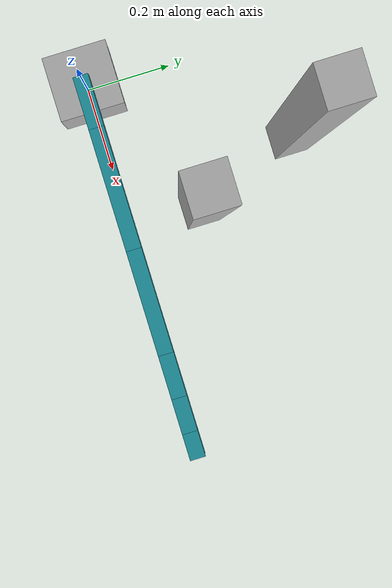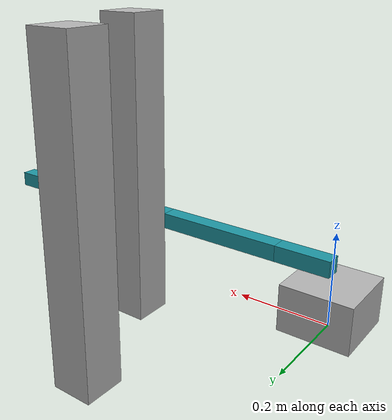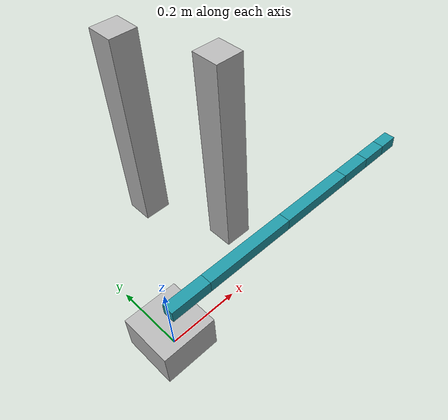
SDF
<sdf version="1.6"><world name="benchmark"><gravity>0 0 -9.81</gravity><physics name="ode" type="ode"><max_step_size>0.001</max_step_size><real_time_update_rate>0</real_time_update_rate><ode><solver><type>quick</type><iters>100</iters></solver></ode></physics><model name="evidence_arm"><static>false</static>
<link name="base"><pose>0 0 .05 0 0 0</pose><inertial><mass>5</mass><inertia><ixx>.1</ixx><iyy>.1</iyy><izz>.1</izz></inertia></inertial><collision name="base_collision"><geometry><box><size>.15 .15 .10</size></box></geometry></collision><visual name="base_visual"><geometry><box><size>.15 .15 .10</size></box></geometry></visual></link>
<joint name="base_fixed" type="fixed"><parent>world</parent><child>base</child></joint>
<link name="link1"><pose>0.06 0 .13 0 0 0</pose><inertial><mass>0.35</mass><inertia><ixx>0.005</ixx><iyy>0.005</iyy><izz>0.005</izz></inertia></inertial>
<collision name="collision"><geometry><box><size>0.12 0.035 0.035</size></box></geometry></collision>
<visual name="visual"><geometry><box><size>0.12 0.035 0.035</size></box></geometry><material><ambient>.12 .6 .65 1</ambient></material></visual></link>
<joint name="joint1" type="revolute"><parent>base</parent><child>link1</child><pose> -0.06 0 0 0 0 0</pose><axis><xyz>0 0 1</xyz><use_parent_model_frame>true</use_parent_model_frame><limit><lower>-2.8</lower><upper>2.8</upper><effort>30</effort><velocity>1.5</velocity></limit><dynamics><damping>.005</damping></dynamics></axis></joint>
<link name="link2"><pose>0.26 0 .13 0 0 0</pose><inertial><mass>0.35</mass><inertia><ixx>0.005</ixx><iyy>0.005</iyy><izz>0.005</izz></inertia></inertial>
<collision name="collision"><geometry><box><size>0.28 0.035 0.035</size></box></geometry></collision>
<visual name="visual"><geometry><box><size>0.28 0.035 0.035</size></box></geometry><material><ambient>.12 .6 .65 1</ambient></material></visual></link>
<joint name="joint2" type="revolute"><parent>link1</parent><child>link2</child><pose> -0.14 0 0 0 0 0</pose><axis><xyz>0 1 0</xyz><use_parent_model_frame>true</use_parent_model_frame><limit><lower>-1.7</lower><upper>1.7</upper><effort>30</effort><velocity>1.5</velocity></limit><dynamics><damping>.005</damping></dynamics></axis></joint>
<link name="link3"><pose>0.52 0 .13 0 0 0</pose><inertial><mass>0.35</mass><inertia><ixx>0.005</ixx><iyy>0.005</iyy><izz>0.005</izz></inertia></inertial>
<collision name="collision"><geometry><box><size>0.24 0.035 0.035</size></box></geometry></collision>
<visual name="visual"><geometry><box><size>0.24 0.035 0.035</size></box></geometry><material><ambient>.12 .6 .65 1</ambient></material></visual></link>
<joint name="joint3" type="revolute"><parent>link2</parent><child>link3</child><pose> -0.12 0 0 0 0 0</pose><axis><xyz>0 1 0</xyz><use_parent_model_frame>true</use_parent_model_frame><limit><lower>-2.1</lower><upper>2.1</upper><effort>30</effort><velocity>1.5</velocity></limit><dynamics><damping>.005</damping></dynamics></axis></joint>
<link name="link4"><pose>0.6900000000000001 0 .13 0 0 0</pose><inertial><mass>0.15</mass><inertia><ixx>0.005</ixx><iyy>0.005</iyy><izz>0.005</izz></inertia></inertial>
<collision name="collision"><geometry><box><size>0.1 0.035 0.035</size></box></geometry></collision>
<visual name="visual"><geometry><box><size>0.1 0.035 0.035</size></box></geometry><material><ambient>.12 .6 .65 1</ambient></material></visual></link>
<joint name="joint4" type="revolute"><parent>link3</parent><child>link4</child><pose> -0.05 0 0 0 0 0</pose><axis><xyz>1 0 0</xyz><use_parent_model_frame>true</use_parent_model_frame><limit><lower>-2.8</lower><upper>2.8</upper><effort>30</effort><velocity>1.5</velocity></limit><dynamics><damping>.005</damping></dynamics></axis></joint>
<link name="link5"><pose>0.78 0 .13 0 0 0</pose><inertial><mass>0.15</mass><inertia><ixx>0.005</ixx><iyy>0.005</iyy><izz>0.005</izz></inertia></inertial>
<collision name="collision"><geometry><box><size>0.08 0.035 0.035</size></box></geometry></collision>
<visual name="visual"><geometry><box><size>0.08 0.035 0.035</size></box></geometry><material><ambient>.12 .6 .65 1</ambient></material></visual></link>
<joint name="joint5" type="revolute"><parent>link4</parent><child>link5</child><pose> -0.04 0 0 0 0 0</pose><axis><xyz>0 1 0</xyz><use_parent_model_frame>true</use_parent_model_frame><limit><lower>-2.0</lower><upper>2.0</upper><effort>30</effort><velocity>1.5</velocity></limit><dynamics><damping>.005</damping></dynamics></axis></joint>
<link name="link6"><pose>0.85 0 .13 0 0 0</pose><inertial><mass>0.15</mass><inertia><ixx>0.005</ixx><iyy>0.005</iyy><izz>0.005</izz></inertia></inertial>
<collision name="collision"><geometry><box><size>0.06 0.035 0.035</size></box></geometry></collision>
<visual name="visual"><geometry><box><size>0.06 0.035 0.035</size></box></geometry><material><ambient>.12 .6 .65 1</ambient></material></visual></link>
<joint name="joint6" type="revolute"><parent>link5</parent><child>link6</child><pose> -0.03 0 0 0 0 0</pose><axis><xyz>1 0 0</xyz><use_parent_model_frame>true</use_parent_model_frame><limit><lower>-2.8</lower><upper>2.8</upper><effort>30</effort><velocity>1.5</velocity></limit><dynamics><damping>.005</damping></dynamics></axis></joint>
</model><model name="obstacle0"><static>true</static><pose>0.35 0.17 0.3 0 0 0</pose><link name="box"><collision name="collision"><geometry><box><size>0.08 0.08 0.6</size></box></geometry></collision><visual name="visual"><geometry><box><size>0.08 0.08 0.6</size></box></geometry></visual></link></model><model name="obstacle1"><static>true</static><pose>0.25 0.42 0.3 0 0 0</pose><link name="box"><collision name="collision"><geometry><box><size>0.08 0.08 0.6</size></box></geometry></collision><visual name="visual"><geometry><box><size>0.08 0.08 0.6</size></box></geometry></visual></link></model></world></sdf>
